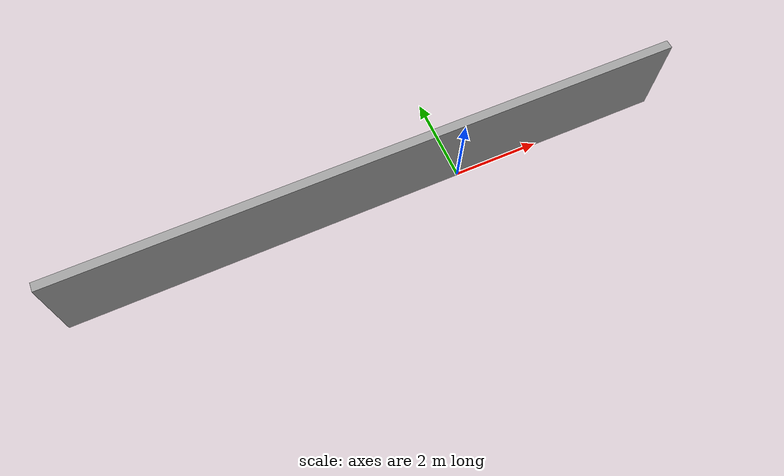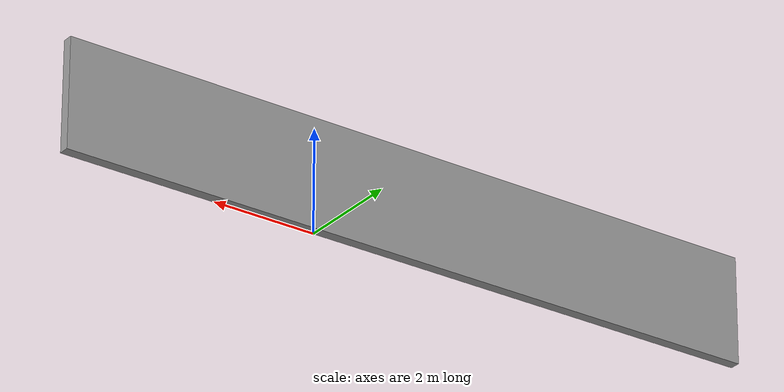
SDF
<?xml version='1.0'?>
<sdf version='1.6'>
  <model name='grey_wall_1400x20x210'>
    <link name='link'>
      <pose frame=''>-2.00445 0.074816 1.06123 0 -0 0</pose>
      <inertial>
        <mass>1</mass>
        <pose frame=''>0 0 0 0 -0 0</pose>
        <inertia>
          <ixx>1</ixx>
          <ixy>0</ixy>
          <ixz>0</ixz>
          <iyy>1</iyy>
          <iyz>0</iyz>
          <izz>1</izz>
        </inertia>
      </inertial>
      <self_collide>0</self_collide>
      <kinematic>0</kinematic>
      <gravity>1</gravity>
      <visual name='visual'>
        <cast_shadows>0</cast_shadows>
        <geometry>
          <box>
            <size>14 0.2 2.1</size>
          </box>
        </geometry>
        <material>
          <script>
            <uri>model://grey_wall/materials/scripts</uri>
            <uri>model://grey_wall/materials/textures</uri>
            <name>vrc/grey_wall</name>
          </script>
          <ambient>1 1 1 1</ambient>
          <diffuse>1 1 1 1</diffuse>
          <specular>0 0 0 1</specular>
          <emissive>0 0 0 1</emissive>
          <shader type='vertex'>
            <normal_map>__default__</normal_map>
          </shader>
        </material>
        <pose frame=''>0 0 0 0 -0 0</pose>
        <transparency>0</transparency>
      </visual>
      <collision name='collision'>
        <laser_retro>0</laser_retro>
        <max_contacts>10</max_contacts>
        <pose frame=''>0 0 0 0 -0 0</pose>
        <geometry>
          <box>
            <size>14 0.2 2.1</size>
          </box>
        </geometry>
        <surface>
          <friction>
            <ode>
              <mu>1</mu>
              <mu2>1</mu2>
              <fdir1>0 0 0</fdir1>
              <slip1>0</slip1>
              <slip2>0</slip2>
            </ode>
            <torsional>
              <coefficient>1</coefficient>
              <patch_radius>0</patch_radius>
              <surface_radius>0</surface_radius>
              <use_patch_radius>1</use_patch_radius>
              <ode>
                <slip>0</slip>
              </ode>
            </torsional>
          </friction>
          <bounce>
            <restitution_coefficient>0</restitution_coefficient>
            <threshold>1e+06</threshold>
          </bounce>
          <contact>
            <collide_without_contact>0</collide_without_contact>
            <collide_without_contact_bitmask>1</collide_without_contact_bitmask>
            <collide_bitmask>1</collide_bitmask>
            <ode>
              <soft_cfm>0</soft_cfm>
              <soft_erp>0.2</soft_erp>
              <kp>1e+13</kp>
              <kd>1</kd>
              <max_vel>0.01</max_vel>
              <min_depth>0</min_depth>
            </ode>
            <bullet>
              <split_impulse>1</split_impulse>
              <split_impulse_penetration_threshold>-0.01</split_impulse_penetration_threshold>
              <soft_cfm>0</soft_cfm>
              <soft_erp>0.2</soft_erp>
              <kp>1e+13</kp>
              <kd>1</kd>
            </bullet>
          </contact>
        </surface>
      </collision>
    </link>
    <static>1</static>
    <allow_auto_disable>0</allow_auto_disable>
  </model>
</sdf>
